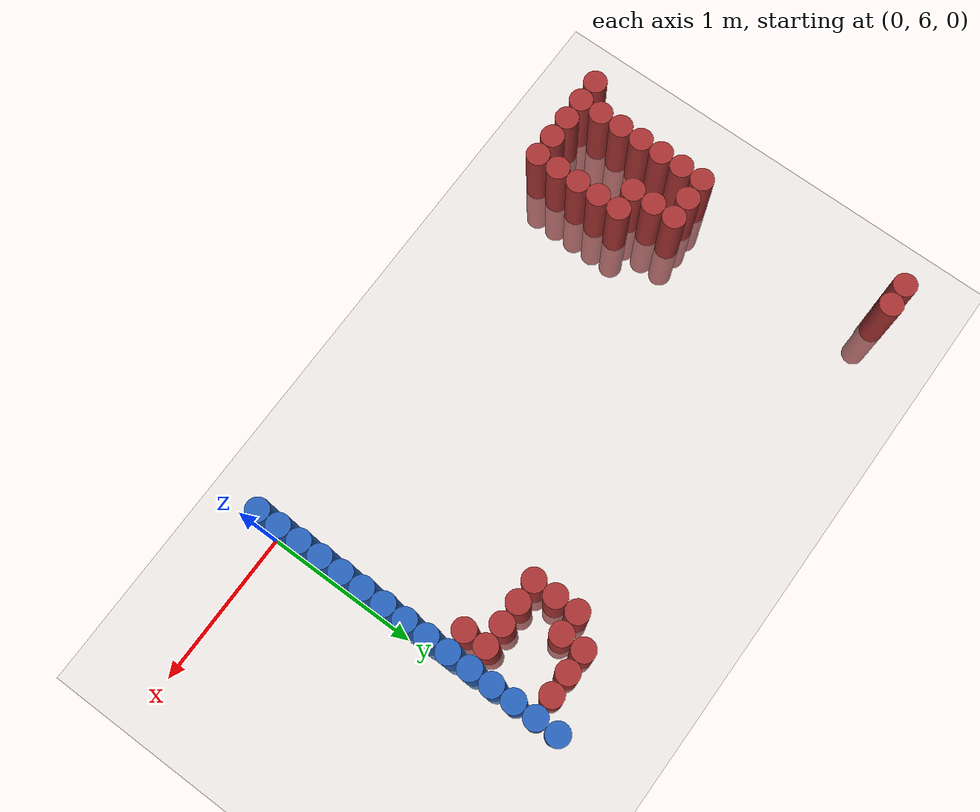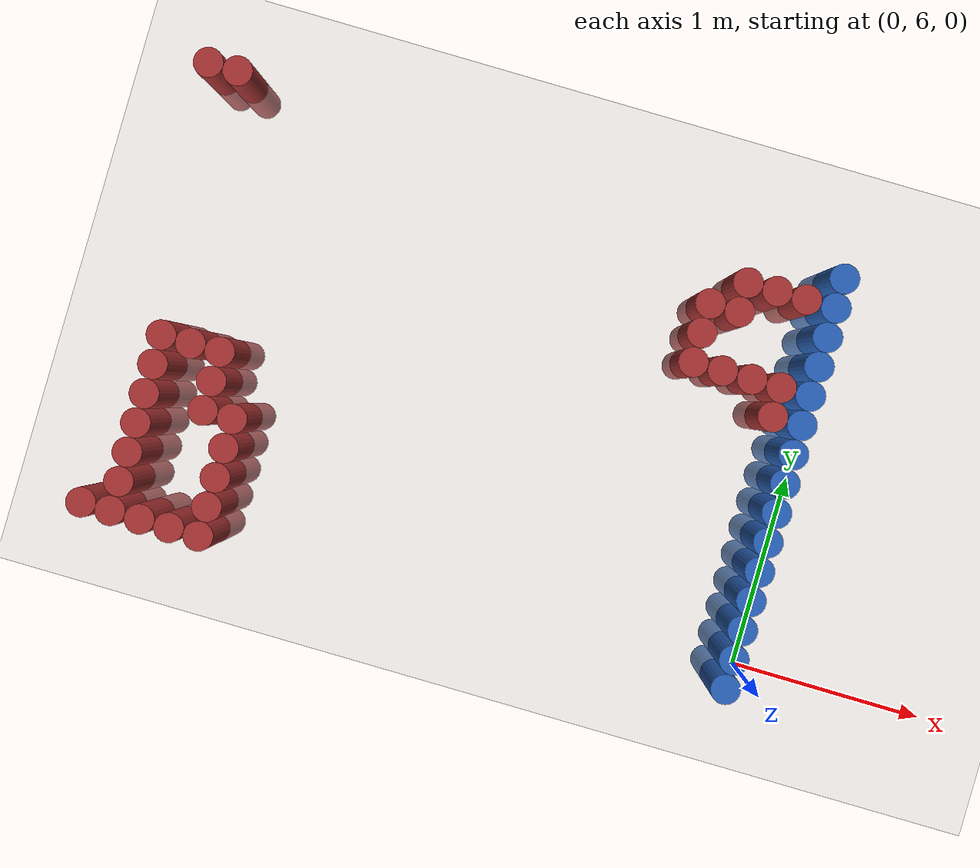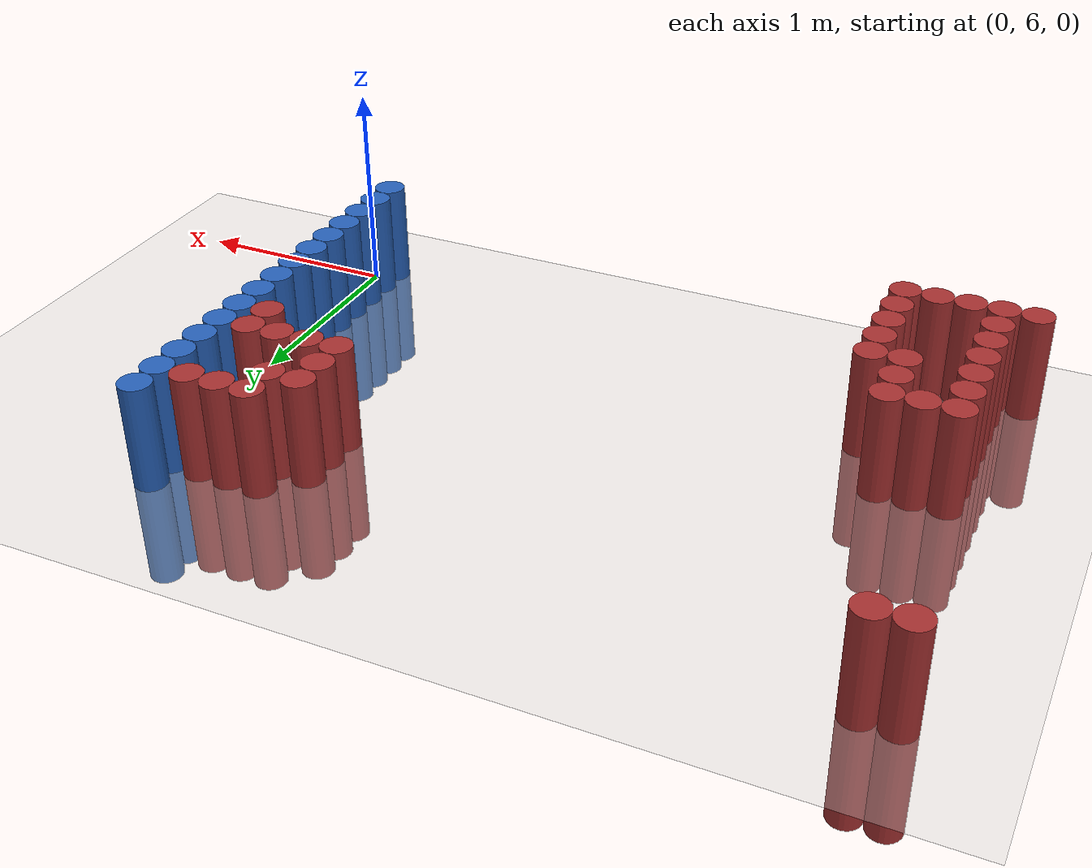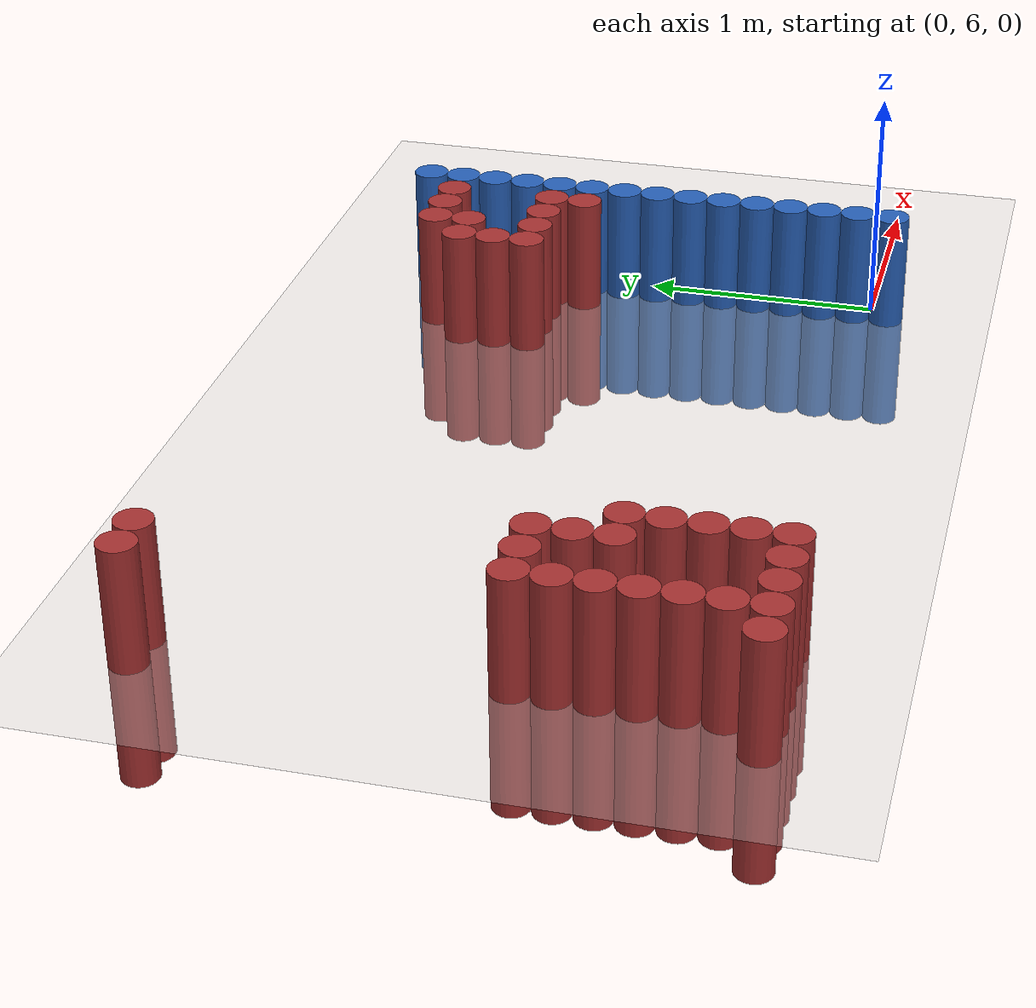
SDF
<sdf version="1.6">
 <world name="default">
  <model name="ground_plane">
   <static>1</static>
   <link name="link">
    <collision name="collision">
     <geometry><plane><normal>0 0 1</normal><size>100 100</size></plane></geometry>
     <surface><friction><ode><mu>100</mu><mu2>50</mu2></ode></friction></surface>
    </collision>
    <visual name="visual">
     <cast_shadows>0</cast_shadows>
     <geometry><plane><normal>0 0 1</normal><size>100 100</size></plane></geometry>
     <material>
      <script><uri>file://media/materials/scripts/gazebo.material</uri><name>Gazebo/Grey</name></script>
     </material>
    </visual>
   </link>
  </model>
  <model name="unit_cylinder_162">
   <static>1</static>
   <pose>-3.375000 5.925000 0.000000 0.000000 0.000000 0.000000</pose>
   <link name="link">
    <inertial>
     <mass>1</mass>
     <inertia><ixx>0.145833</ixx><ixy>0</ixy><ixz>0</ixz><iyy>0.145833</iyy><iyz>0</iyz><izz>0.125</izz></inertia>
    </inertial>
    <collision name="collision">
     <geometry><cylinder><radius>0.075000</radius><length>1</length></cylinder></geometry>
    </collision>
    <visual name="visual">
     <geometry><cylinder><radius>0.075000</radius><length>1</length></cylinder></geometry>
     <material>
      <ambient>0.648000 0.192000 0.192000 1</ambient>
      <diffuse>0.648000 0.192000 0.192000 1</diffuse>
     </material>
     <material>
      <script><name>Gazebo/Grey</name><uri>file://media/materials/scripts/gazebo.material</uri></script>
     </material>
    </visual>
   </link>
  </model>
  <model name="unit_cylinder_163">
   <static>1</static>
   <pose>-3.375000 8.175000 0.000000 0.000000 0.000000 0.000000</pose>
   <link name="link">
    <inertial>
     <mass>1</mass>
     <inertia><ixx>0.145833</ixx><ixy>0</ixy><ixz>0</ixz><iyy>0.145833</iyy><iyz>0</iyz><izz>0.125</izz></inertia>
    </inertial>
    <collision name="collision">
     <geometry><cylinder><radius>0.075000</radius><length>1</length></cylinder></geometry>
    </collision>
    <visual name="visual">
     <geometry><cylinder><radius>0.075000</radius><length>1</length></cylinder></geometry>
     <material>
      <ambient>0.648000 0.192000 0.192000 1</ambient>
      <diffuse>0.648000 0.192000 0.192000 1</diffuse>
     </material>
     <material>
      <script><name>Gazebo/Grey</name><uri>file://media/materials/scripts/gazebo.material</uri></script>
     </material>
    </visual>
   </link>
  </model>
  <model name="unit_cylinder_171">
   <static>1</static>
   <pose>-3.225000 5.925000 0.000000 0.000000 0.000000 0.000000</pose>
   <link name="link">
    <inertial>
     <mass>1</mass>
     <inertia><ixx>0.145833</ixx><ixy>0</ixy><ixz>0</ixz><iyy>0.145833</iyy><iyz>0</iyz><izz>0.125</izz></inertia>
    </inertial>
    <collision name="collision">
     <geometry><cylinder><radius>0.075000</radius><length>1</length></cylinder></geometry>
    </collision>
    <visual name="visual">
     <geometry><cylinder><radius>0.075000</radius><length>1</length></cylinder></geometry>
     <material>
      <ambient>0.648000 0.192000 0.192000 1</ambient>
      <diffuse>0.648000 0.192000 0.192000 1</diffuse>
     </material>
     <material>
      <script><name>Gazebo/Grey</name><uri>file://media/materials/scripts/gazebo.material</uri></script>
     </material>
    </visual>
   </link>
  </model>
  <model name="unit_cylinder_172">
   <static>1</static>
   <pose>-3.225000 6.075000 0.000000 0.000000 0.000000 0.000000</pose>
   <link name="link">
    <inertial>
     <mass>1</mass>
     <inertia><ixx>0.145833</ixx><ixy>0</ixy><ixz>0</ixz><iyy>0.145833</iyy><iyz>0</iyz><izz>0.125</izz></inertia>
    </inertial>
    <collision name="collision">
     <geometry><cylinder><radius>0.075000</radius><length>1</length></cylinder></geometry>
    </collision>
    <visual name="visual">
     <geometry><cylinder><radius>0.075000</radius><length>1</length></cylinder></geometry>
     <material>
      <ambient>0.648000 0.192000 0.192000 1</ambient>
      <diffuse>0.648000 0.192000 0.192000 1</diffuse>
     </material>
     <material>
      <script><name>Gazebo/Grey</name><uri>file://media/materials/scripts/gazebo.material</uri></script>
     </material>
    </visual>
   </link>
  </model>
  <model name="unit_cylinder_173">
   <static>1</static>
   <pose>-3.225000 6.225000 0.000000 0.000000 0.000000 0.000000</pose>
   <link name="link">
    <inertial>
     <mass>1</mass>
     <inertia><ixx>0.145833</ixx><ixy>0</ixy><ixz>0</ixz><iyy>0.145833</iyy><iyz>0</iyz><izz>0.125</izz></inertia>
    </inertial>
    <collision name="collision">
     <geometry><cylinder><radius>0.075000</radius><length>1</length></cylinder></geometry>
    </collision>
    <visual name="visual">
     <geometry><cylinder><radius>0.075000</radius><length>1</length></cylinder></geometry>
     <material>
      <ambient>0.648000 0.192000 0.192000 1</ambient>
      <diffuse>0.648000 0.192000 0.192000 1</diffuse>
     </material>
     <material>
      <script><name>Gazebo/Grey</name><uri>file://media/materials/scripts/gazebo.material</uri></script>
     </material>
    </visual>
   </link>
  </model>
  <model name="unit_cylinder_174">
   <static>1</static>
   <pose>-3.225000 6.375000 0.000000 0.000000 0.000000 0.000000</pose>
   <link name="link">
    <inertial>
     <mass>1</mass>
     <inertia><ixx>0.145833</ixx><ixy>0</ixy><ixz>0</ixz><iyy>0.145833</iyy><iyz>0</iyz><izz>0.125</izz></inertia>
    </inertial>
    <collision name="collision">
     <geometry><cylinder><radius>0.075000</radius><length>1</length></cylinder></geometry>
    </collision>
    <visual name="visual">
     <geometry><cylinder><radius>0.075000</radius><length>1</length></cylinder></geometry>
     <material>
      <ambient>0.648000 0.192000 0.192000 1</ambient>
      <diffuse>0.648000 0.192000 0.192000 1</diffuse>
     </material>
     <material>
      <script><name>Gazebo/Grey</name><uri>file://media/materials/scripts/gazebo.material</uri></script>
     </material>
    </visual>
   </link>
  </model>
  <model name="unit_cylinder_175">
   <static>1</static>
   <pose>-3.225000 6.525000 0.000000 0.000000 0.000000 0.000000</pose>
   <link name="link">
    <inertial>
     <mass>1</mass>
     <inertia><ixx>0.145833</ixx><ixy>0</ixy><ixz>0</ixz><iyy>0.145833</iyy><iyz>0</iyz><izz>0.125</izz></inertia>
    </inertial>
    <collision name="collision">
     <geometry><cylinder><radius>0.075000</radius><length>1</length></cylinder></geometry>
    </collision>
    <visual name="visual">
     <geometry><cylinder><radius>0.075000</radius><length>1</length></cylinder></geometry>
     <material>
      <ambient>0.648000 0.192000 0.192000 1</ambient>
      <diffuse>0.648000 0.192000 0.192000 1</diffuse>
     </material>
     <material>
      <script><name>Gazebo/Grey</name><uri>file://media/materials/scripts/gazebo.material</uri></script>
     </material>
    </visual>
   </link>
  </model>
  <model name="unit_cylinder_176">
   <static>1</static>
   <pose>-3.225000 6.675000 0.000000 0.000000 0.000000 0.000000</pose>
   <link name="link">
    <inertial>
     <mass>1</mass>
     <inertia><ixx>0.145833</ixx><ixy>0</ixy><ixz>0</ixz><iyy>0.145833</iyy><iyz>0</iyz><izz>0.125</izz></inertia>
    </inertial>
    <collision name="collision">
     <geometry><cylinder><radius>0.075000</radius><length>1</length></cylinder></geometry>
    </collision>
    <visual name="visual">
     <geometry><cylinder><radius>0.075000</radius><length>1</length></cylinder></geometry>
     <material>
      <ambient>0.648000 0.192000 0.192000 1</ambient>
      <diffuse>0.648000 0.192000 0.192000 1</diffuse>
     </material>
     <material>
      <script><name>Gazebo/Grey</name><uri>file://media/materials/scripts/gazebo.material</uri></script>
     </material>
    </visual>
   </link>
  </model>
  <model name="unit_cylinder_177">
   <static>1</static>
   <pose>-3.225000 6.825000 0.000000 0.000000 0.000000 0.000000</pose>
   <link name="link">
    <inertial>
     <mass>1</mass>
     <inertia><ixx>0.145833</ixx><ixy>0</ixy><ixz>0</ixz><iyy>0.145833</iyy><iyz>0</iyz><izz>0.125</izz></inertia>
    </inertial>
    <collision name="collision">
     <geometry><cylinder><radius>0.075000</radius><length>1</length></cylinder></geometry>
    </collision>
    <visual name="visual">
     <geometry><cylinder><radius>0.075000</radius><length>1</length></cylinder></geometry>
     <material>
      <ambient>0.648000 0.192000 0.192000 1</ambient>
      <diffuse>0.648000 0.192000 0.192000 1</diffuse>
     </material>
     <material>
      <script><name>Gazebo/Grey</name><uri>file://media/materials/scripts/gazebo.material</uri></script>
     </material>
    </visual>
   </link>
  </model>
  <model name="unit_cylinder_178">
   <static>1</static>
   <pose>-3.225000 8.175000 0.000000 0.000000 0.000000 0.000000</pose>
   <link name="link">
    <inertial>
     <mass>1</mass>
     <inertia><ixx>0.145833</ixx><ixy>0</ixy><ixz>0</ixz><iyy>0.145833</iyy><iyz>0</iyz><izz>0.125</izz></inertia>
    </inertial>
    <collision name="collision">
     <geometry><cylinder><radius>0.075000</radius><length>1</length></cylinder></geometry>
    </collision>
    <visual name="visual">
     <geometry><cylinder><radius>0.075000</radius><length>1</length></cylinder></geometry>
     <material>
      <ambient>0.648000 0.192000 0.192000 1</ambient>
      <diffuse>0.648000 0.192000 0.192000 1</diffuse>
     </material>
     <material>
      <script><name>Gazebo/Grey</name><uri>file://media/materials/scripts/gazebo.material</uri></script>
     </material>
    </visual>
   </link>
  </model>
  <model name="unit_cylinder_184">
   <static>1</static>
   <pose>-3.075000 5.925000 0.000000 0.000000 0.000000 0.000000</pose>
   <link name="link">
    <inertial>
     <mass>1</mass>
     <inertia><ixx>0.145833</ixx><ixy>0</ixy><ixz>0</ixz><iyy>0.145833</iyy><iyz>0</iyz><izz>0.125</izz></inertia>
    </inertial>
    <collision name="collision">
     <geometry><cylinder><radius>0.075000</radius><length>1</length></cylinder></geometry>
    </collision>
    <visual name="visual">
     <geometry><cylinder><radius>0.075000</radius><length>1</length></cylinder></geometry>
     <material>
      <ambient>0.648000 0.192000 0.192000 1</ambient>
      <diffuse>0.648000 0.192000 0.192000 1</diffuse>
     </material>
     <material>
      <script><name>Gazebo/Grey</name><uri>file://media/materials/scripts/gazebo.material</uri></script>
     </material>
    </visual>
   </link>
  </model>
  <model name="unit_cylinder_185">
   <static>1</static>
   <pose>-3.075000 6.825000 0.000000 0.000000 0.000000 0.000000</pose>
   <link name="link">
    <inertial>
     <mass>1</mass>
     <inertia><ixx>0.145833</ixx><ixy>0</ixy><ixz>0</ixz><iyy>0.145833</iyy><iyz>0</iyz><izz>0.125</izz></inertia>
    </inertial>
    <collision name="collision">
     <geometry><cylinder><radius>0.075000</radius><length>1</length></cylinder></geometry>
    </collision>
    <visual name="visual">
     <geometry><cylinder><radius>0.075000</radius><length>1</length></cylinder></geometry>
     <material>
      <ambient>0.648000 0.192000 0.192000 1</ambient>
      <diffuse>0.648000 0.192000 0.192000 1</diffuse>
     </material>
     <material>
      <script><name>Gazebo/Grey</name><uri>file://media/materials/scripts/gazebo.material</uri></script>
     </material>
    </visual>
   </link>
  </model>
  <model name="unit_cylinder_193">
   <static>1</static>
   <pose>-2.925000 5.925000 0.000000 0.000000 0.000000 0.000000</pose>
   <link name="link">
    <inertial>
     <mass>1</mass>
     <inertia><ixx>0.145833</ixx><ixy>0</ixy><ixz>0</ixz><iyy>0.145833</iyy><iyz>0</iyz><izz>0.125</izz></inertia>
    </inertial>
    <collision name="collision">
     <geometry><cylinder><radius>0.075000</radius><length>1</length></cylinder></geometry>
    </collision>
    <visual name="visual">
     <geometry><cylinder><radius>0.075000</radius><length>1</length></cylinder></geometry>
     <material>
      <ambient>0.648000 0.192000 0.192000 1</ambient>
      <diffuse>0.648000 0.192000 0.192000 1</diffuse>
     </material>
     <material>
      <script><name>Gazebo/Grey</name><uri>file://media/materials/scripts/gazebo.material</uri></script>
     </material>
    </visual>
   </link>
  </model>
  <model name="unit_cylinder_194">
   <static>1</static>
   <pose>-2.925000 6.525000 0.000000 0.000000 0.000000 0.000000</pose>
   <link name="link">
    <inertial>
     <mass>1</mass>
     <inertia><ixx>0.145833</ixx><ixy>0</ixy><ixz>0</ixz><iyy>0.145833</iyy><iyz>0</iyz><izz>0.125</izz></inertia>
    </inertial>
    <collision name="collision">
     <geometry><cylinder><radius>0.075000</radius><length>1</length></cylinder></geometry>
    </collision>
    <visual name="visual">
     <geometry><cylinder><radius>0.075000</radius><length>1</length></cylinder></geometry>
     <material>
      <ambient>0.648000 0.192000 0.192000 1</ambient>
      <diffuse>0.648000 0.192000 0.192000 1</diffuse>
     </material>
     <material>
      <script><name>Gazebo/Grey</name><uri>file://media/materials/scripts/gazebo.material</uri></script>
     </material>
    </visual>
   </link>
  </model>
  <model name="unit_cylinder_195">
   <static>1</static>
   <pose>-2.925000 6.675000 0.000000 0.000000 0.000000 0.000000</pose>
   <link name="link">
    <inertial>
     <mass>1</mass>
     <inertia><ixx>0.145833</ixx><ixy>0</ixy><ixz>0</ixz><iyy>0.145833</iyy><iyz>0</iyz><izz>0.125</izz></inertia>
    </inertial>
    <collision name="collision">
     <geometry><cylinder><radius>0.075000</radius><length>1</length></cylinder></geometry>
    </collision>
    <visual name="visual">
     <geometry><cylinder><radius>0.075000</radius><length>1</length></cylinder></geometry>
     <material>
      <ambient>0.648000 0.192000 0.192000 1</ambient>
      <diffuse>0.648000 0.192000 0.192000 1</diffuse>
     </material>
     <material>
      <script><name>Gazebo/Grey</name><uri>file://media/materials/scripts/gazebo.material</uri></script>
     </material>
    </visual>
   </link>
  </model>
  <model name="unit_cylinder_196">
   <static>1</static>
   <pose>-2.925000 6.825000 0.000000 0.000000 0.000000 0.000000</pose>
   <link name="link">
    <inertial>
     <mass>1</mass>
     <inertia><ixx>0.145833</ixx><ixy>0</ixy><ixz>0</ixz><iyy>0.145833</iyy><iyz>0</iyz><izz>0.125</izz></inertia>
    </inertial>
    <collision name="collision">
     <geometry><cylinder><radius>0.075000</radius><length>1</length></cylinder></geometry>
    </collision>
    <visual name="visual">
     <geometry><cylinder><radius>0.075000</radius><length>1</length></cylinder></geometry>
     <material>
      <ambient>0.648000 0.192000 0.192000 1</ambient>
      <diffuse>0.648000 0.192000 0.192000 1</diffuse>
     </material>
     <material>
      <script><name>Gazebo/Grey</name><uri>file://media/materials/scripts/gazebo.material</uri></script>
     </material>
    </visual>
   </link>
  </model>
  <model name="unit_cylinder_197">
   <static>1</static>
   <pose>-2.775000 5.925000 0.000000 0.000000 0.000000 0.000000</pose>
   <link name="link">
    <inertial>
     <mass>1</mass>
     <inertia><ixx>0.145833</ixx><ixy>0</ixy><ixz>0</ixz><iyy>0.145833</iyy><iyz>0</iyz><izz>0.125</izz></inertia>
    </inertial>
    <collision name="collision">
     <geometry><cylinder><radius>0.075000</radius><length>1</length></cylinder></geometry>
    </collision>
    <visual name="visual">
     <geometry><cylinder><radius>0.075000</radius><length>1</length></cylinder></geometry>
     <material>
      <ambient>0.648000 0.192000 0.192000 1</ambient>
      <diffuse>0.648000 0.192000 0.192000 1</diffuse>
     </material>
     <material>
      <script><name>Gazebo/Grey</name><uri>file://media/materials/scripts/gazebo.material</uri></script>
     </material>
    </visual>
   </link>
  </model>
  <model name="unit_cylinder_198">
   <static>1</static>
   <pose>-2.775000 6.075000 0.000000 0.000000 0.000000 0.000000</pose>
   <link name="link">
    <inertial>
     <mass>1</mass>
     <inertia><ixx>0.145833</ixx><ixy>0</ixy><ixz>0</ixz><iyy>0.145833</iyy><iyz>0</iyz><izz>0.125</izz></inertia>
    </inertial>
    <collision name="collision">
     <geometry><cylinder><radius>0.075000</radius><length>1</length></cylinder></geometry>
    </collision>
    <visual name="visual">
     <geometry><cylinder><radius>0.075000</radius><length>1</length></cylinder></geometry>
     <material>
      <ambient>0.648000 0.192000 0.192000 1</ambient>
      <diffuse>0.648000 0.192000 0.192000 1</diffuse>
     </material>
     <material>
      <script><name>Gazebo/Grey</name><uri>file://media/materials/scripts/gazebo.material</uri></script>
     </material>
    </visual>
   </link>
  </model>
  <model name="unit_cylinder_199">
   <static>1</static>
   <pose>-2.775000 6.225000 0.000000 0.000000 0.000000 0.000000</pose>
   <link name="link">
    <inertial>
     <mass>1</mass>
     <inertia><ixx>0.145833</ixx><ixy>0</ixy><ixz>0</ixz><iyy>0.145833</iyy><iyz>0</iyz><izz>0.125</izz></inertia>
    </inertial>
    <collision name="collision">
     <geometry><cylinder><radius>0.075000</radius><length>1</length></cylinder></geometry>
    </collision>
    <visual name="visual">
     <geometry><cylinder><radius>0.075000</radius><length>1</length></cylinder></geometry>
     <material>
      <ambient>0.648000 0.192000 0.192000 1</ambient>
      <diffuse>0.648000 0.192000 0.192000 1</diffuse>
     </material>
     <material>
      <script><name>Gazebo/Grey</name><uri>file://media/materials/scripts/gazebo.material</uri></script>
     </material>
    </visual>
   </link>
  </model>
  <model name="unit_cylinder_200">
   <static>1</static>
   <pose>-2.775000 6.375000 0.000000 0.000000 0.000000 0.000000</pose>
   <link name="link">
    <inertial>
     <mass>1</mass>
     <inertia><ixx>0.145833</ixx><ixy>0</ixy><ixz>0</ixz><iyy>0.145833</iyy><iyz>0</iyz><izz>0.125</izz></inertia>
    </inertial>
    <collision name="collision">
     <geometry><cylinder><radius>0.075000</radius><length>1</length></cylinder></geometry>
    </collision>
    <visual name="visual">
     <geometry><cylinder><radius>0.075000</radius><length>1</length></cylinder></geometry>
     <material>
      <ambient>0.648000 0.192000 0.192000 1</ambient>
      <diffuse>0.648000 0.192000 0.192000 1</diffuse>
     </material>
     <material>
      <script><name>Gazebo/Grey</name><uri>file://media/materials/scripts/gazebo.material</uri></script>
     </material>
    </visual>
   </link>
  </model>
  <model name="unit_cylinder_201">
   <static>1</static>
   <pose>-2.775000 6.525000 0.000000 0.000000 0.000000 0.000000</pose>
   <link name="link">
    <inertial>
     <mass>1</mass>
     <inertia><ixx>0.145833</ixx><ixy>0</ixy><ixz>0</ixz><iyy>0.145833</iyy><iyz>0</iyz><izz>0.125</izz></inertia>
    </inertial>
    <collision name="collision">
     <geometry><cylinder><radius>0.075000</radius><length>1</length></cylinder></geometry>
    </collision>
    <visual name="visual">
     <geometry><cylinder><radius>0.075000</radius><length>1</length></cylinder></geometry>
     <material>
      <ambient>0.648000 0.192000 0.192000 1</ambient>
      <diffuse>0.648000 0.192000 0.192000 1</diffuse>
     </material>
     <material>
      <script><name>Gazebo/Grey</name><uri>file://media/materials/scripts/gazebo.material</uri></script>
     </material>
    </visual>
   </link>
  </model>
  <model name="unit_cylinder_226">
   <static>1</static>
   <pose>-0.675000 7.425000 0.000000 0.000000 0.000000 0.000000</pose>
   <link name="link">
    <inertial>
     <mass>1</mass>
     <inertia><ixx>0.145833</ixx><ixy>0</ixy><ixz>0</ixz><iyy>0.145833</iyy><iyz>0</iyz><izz>0.125</izz></inertia>
    </inertial>
    <collision name="collision">
     <geometry><cylinder><radius>0.075000</radius><length>1</length></cylinder></geometry>
    </collision>
    <visual name="visual">
     <geometry><cylinder><radius>0.075000</radius><length>1</length></cylinder></geometry>
     <material>
      <ambient>0.648000 0.192000 0.192000 1</ambient>
      <diffuse>0.648000 0.192000 0.192000 1</diffuse>
     </material>
     <material>
      <script><name>Gazebo/Grey</name><uri>file://media/materials/scripts/gazebo.material</uri></script>
     </material>
    </visual>
   </link>
  </model>
  <model name="unit_cylinder_227">
   <static>1</static>
   <pose>-0.675000 7.575000 0.000000 0.000000 0.000000 0.000000</pose>
   <link name="link">
    <inertial>
     <mass>1</mass>
     <inertia><ixx>0.145833</ixx><ixy>0</ixy><ixz>0</ixz><iyy>0.145833</iyy><iyz>0</iyz><izz>0.125</izz></inertia>
    </inertial>
    <collision name="collision">
     <geometry><cylinder><radius>0.075000</radius><length>1</length></cylinder></geometry>
    </collision>
    <visual name="visual">
     <geometry><cylinder><radius>0.075000</radius><length>1</length></cylinder></geometry>
     <material>
      <ambient>0.648000 0.192000 0.192000 1</ambient>
      <diffuse>0.648000 0.192000 0.192000 1</diffuse>
     </material>
     <material>
      <script><name>Gazebo/Grey</name><uri>file://media/materials/scripts/gazebo.material</uri></script>
     </material>
    </visual>
   </link>
  </model>
  <model name="unit_cylinder_228">
   <static>1</static>
   <pose>-0.675000 7.725000 0.000000 0.000000 0.000000 0.000000</pose>
   <link name="link">
    <inertial>
     <mass>1</mass>
     <inertia><ixx>0.145833</ixx><ixy>0</ixy><ixz>0</ixz><iyy>0.145833</iyy><iyz>0</iyz><izz>0.125</izz></inertia>
    </inertial>
    <collision name="collision">
     <geometry><cylinder><radius>0.075000</radius><length>1</length></cylinder></geometry>
    </collision>
    <visual name="visual">
     <geometry><cylinder><radius>0.075000</radius><length>1</length></cylinder></geometry>
     <material>
      <ambient>0.648000 0.192000 0.192000 1</ambient>
      <diffuse>0.648000 0.192000 0.192000 1</diffuse>
     </material>
     <material>
      <script><name>Gazebo/Grey</name><uri>file://media/materials/scripts/gazebo.material</uri></script>
     </material>
    </visual>
   </link>
  </model>
  <model name="unit_cylinder_235">
   <static>1</static>
   <pose>-0.525000 7.425000 0.000000 0.000000 0.000000 0.000000</pose>
   <link name="link">
    <inertial>
     <mass>1</mass>
     <inertia><ixx>0.145833</ixx><ixy>0</ixy><ixz>0</ixz><iyy>0.145833</iyy><iyz>0</iyz><izz>0.125</izz></inertia>
    </inertial>
    <collision name="collision">
     <geometry><cylinder><radius>0.075000</radius><length>1</length></cylinder></geometry>
    </collision>
    <visual name="visual">
     <geometry><cylinder><radius>0.075000</radius><length>1</length></cylinder></geometry>
     <material>
      <ambient>0.648000 0.192000 0.192000 1</ambient>
      <diffuse>0.648000 0.192000 0.192000 1</diffuse>
     </material>
     <material>
      <script><name>Gazebo/Grey</name><uri>file://media/materials/scripts/gazebo.material</uri></script>
     </material>
    </visual>
   </link>
  </model>
  <model name="unit_cylinder_236">
   <static>1</static>
   <pose>-0.525000 7.725000 0.000000 0.000000 0.000000 0.000000</pose>
   <link name="link">
    <inertial>
     <mass>1</mass>
     <inertia><ixx>0.145833</ixx><ixy>0</ixy><ixz>0</ixz><iyy>0.145833</iyy><iyz>0</iyz><izz>0.125</izz></inertia>
    </inertial>
    <collision name="collision">
     <geometry><cylinder><radius>0.075000</radius><length>1</length></cylinder></geometry>
    </collision>
    <visual name="visual">
     <geometry><cylinder><radius>0.075000</radius><length>1</length></cylinder></geometry>
     <material>
      <ambient>0.648000 0.192000 0.192000 1</ambient>
      <diffuse>0.648000 0.192000 0.192000 1</diffuse>
     </material>
     <material>
      <script><name>Gazebo/Grey</name><uri>file://media/materials/scripts/gazebo.material</uri></script>
     </material>
    </visual>
   </link>
  </model>
  <model name="unit_cylinder_237">
   <static>1</static>
   <pose>-0.525000 7.875000 0.000000 0.000000 0.000000 0.000000</pose>
   <link name="link">
    <inertial>
     <mass>1</mass>
     <inertia><ixx>0.145833</ixx><ixy>0</ixy><ixz>0</ixz><iyy>0.145833</iyy><iyz>0</iyz><izz>0.125</izz></inertia>
    </inertial>
    <collision name="collision">
     <geometry><cylinder><radius>0.075000</radius><length>1</length></cylinder></geometry>
    </collision>
    <visual name="visual">
     <geometry><cylinder><radius>0.075000</radius><length>1</length></cylinder></geometry>
     <material>
      <ambient>0.648000 0.192000 0.192000 1</ambient>
      <diffuse>0.648000 0.192000 0.192000 1</diffuse>
     </material>
     <material>
      <script><name>Gazebo/Grey</name><uri>file://media/materials/scripts/gazebo.material</uri></script>
     </material>
    </visual>
   </link>
  </model>
  <model name="unit_cylinder_243">
   <static>1</static>
   <pose>-0.375000 7.425000 0.000000 0.000000 0.000000 0.000000</pose>
   <link name="link">
    <inertial>
     <mass>1</mass>
     <inertia><ixx>0.145833</ixx><ixy>0</ixy><ixz>0</ixz><iyy>0.145833</iyy><iyz>0</iyz><izz>0.125</izz></inertia>
    </inertial>
    <collision name="collision">
     <geometry><cylinder><radius>0.075000</radius><length>1</length></cylinder></geometry>
    </collision>
    <visual name="visual">
     <geometry><cylinder><radius>0.075000</radius><length>1</length></cylinder></geometry>
     <material>
      <ambient>0.648000 0.192000 0.192000 1</ambient>
      <diffuse>0.648000 0.192000 0.192000 1</diffuse>
     </material>
     <material>
      <script><name>Gazebo/Grey</name><uri>file://media/materials/scripts/gazebo.material</uri></script>
     </material>
    </visual>
   </link>
  </model>
  <model name="unit_cylinder_244">
   <static>1</static>
   <pose>-0.375000 7.875000 0.000000 0.000000 0.000000 0.000000</pose>
   <link name="link">
    <inertial>
     <mass>1</mass>
     <inertia><ixx>0.145833</ixx><ixy>0</ixy><ixz>0</ixz><iyy>0.145833</iyy><iyz>0</iyz><izz>0.125</izz></inertia>
    </inertial>
    <collision name="collision">
     <geometry><cylinder><radius>0.075000</radius><length>1</length></cylinder></geometry>
    </collision>
    <visual name="visual">
     <geometry><cylinder><radius>0.075000</radius><length>1</length></cylinder></geometry>
     <material>
      <ambient>0.648000 0.192000 0.192000 1</ambient>
      <diffuse>0.648000 0.192000 0.192000 1</diffuse>
     </material>
     <material>
      <script><name>Gazebo/Grey</name><uri>file://media/materials/scripts/gazebo.material</uri></script>
     </material>
    </visual>
   </link>
  </model>
  <model name="unit_cylinder_252">
   <static>1</static>
   <pose>-0.225000 7.275000 0.000000 0.000000 0.000000 0.000000</pose>
   <link name="link">
    <inertial>
     <mass>1</mass>
     <inertia><ixx>0.145833</ixx><ixy>0</ixy><ixz>0</ixz><iyy>0.145833</iyy><iyz>0</iyz><izz>0.125</izz></inertia>
    </inertial>
    <collision name="collision">
     <geometry><cylinder><radius>0.075000</radius><length>1</length></cylinder></geometry>
    </collision>
    <visual name="visual">
     <geometry><cylinder><radius>0.075000</radius><length>1</length></cylinder></geometry>
     <material>
      <ambient>0.648000 0.192000 0.192000 1</ambient>
      <diffuse>0.648000 0.192000 0.192000 1</diffuse>
     </material>
     <material>
      <script><name>Gazebo/Grey</name><uri>file://media/materials/scripts/gazebo.material</uri></script>
     </material>
    </visual>
   </link>
  </model>
  <model name="unit_cylinder_253">
   <static>1</static>
   <pose>-0.225000 7.425000 0.000000 0.000000 0.000000 0.000000</pose>
   <link name="link">
    <inertial>
     <mass>1</mass>
     <inertia><ixx>0.145833</ixx><ixy>0</ixy><ixz>0</ixz><iyy>0.145833</iyy><iyz>0</iyz><izz>0.125</izz></inertia>
    </inertial>
    <collision name="collision">
     <geometry><cylinder><radius>0.075000</radius><length>1</length></cylinder></geometry>
    </collision>
    <visual name="visual">
     <geometry><cylinder><radius>0.075000</radius><length>1</length></cylinder></geometry>
     <material>
      <ambient>0.648000 0.192000 0.192000 1</ambient>
      <diffuse>0.648000 0.192000 0.192000 1</diffuse>
     </material>
     <material>
      <script><name>Gazebo/Grey</name><uri>file://media/materials/scripts/gazebo.material</uri></script>
     </material>
    </visual>
   </link>
  </model>
  <model name="unit_cylinder_254">
   <static>1</static>
   <pose>-0.225000 7.875000 0.000000 0.000000 0.000000 0.000000</pose>
   <link name="link">
    <inertial>
     <mass>1</mass>
     <inertia><ixx>0.145833</ixx><ixy>0</ixy><ixz>0</ixz><iyy>0.145833</iyy><iyz>0</iyz><izz>0.125</izz></inertia>
    </inertial>
    <collision name="collision">
     <geometry><cylinder><radius>0.075000</radius><length>1</length></cylinder></geometry>
    </collision>
    <visual name="visual">
     <geometry><cylinder><radius>0.075000</radius><length>1</length></cylinder></geometry>
     <material>
      <ambient>0.648000 0.192000 0.192000 1</ambient>
      <diffuse>0.648000 0.192000 0.192000 1</diffuse>
     </material>
     <material>
      <script><name>Gazebo/Grey</name><uri>file://media/materials/scripts/gazebo.material</uri></script>
     </material>
    </visual>
   </link>
  </model>
  <model name="unit_cylinder_260">
   <static>1</static>
   <pose>-0.075000 5.925000 0.000000 0.000000 0.000000 0.000000</pose>
   <link name="link">
    <inertial>
     <mass>1</mass>
     <inertia><ixx>0.145833</ixx><ixy>0</ixy><ixz>0</ixz><iyy>0.145833</iyy><iyz>0</iyz><izz>0.125</izz></inertia>
    </inertial>
    <collision name="collision">
     <geometry><cylinder><radius>0.075000</radius><length>1</length></cylinder></geometry>
    </collision>
    <visual name="visual">
     <geometry><cylinder><radius>0.075000</radius><length>1</length></cylinder></geometry>
     <material>
      <ambient>0.152000 0.379000 0.720000 1</ambient>
      <diffuse>0.152000 0.379000 0.720000 1</diffuse>
     </material>
     <material>
      <script><name>Gazebo/Grey</name><uri>file://media/materials/scripts/gazebo.material</uri></script>
     </material>
    </visual>
   </link>
  </model>
  <model name="unit_cylinder_261">
   <static>1</static>
   <pose>-0.075000 6.075000 0.000000 0.000000 0.000000 0.000000</pose>
   <link name="link">
    <inertial>
     <mass>1</mass>
     <inertia><ixx>0.145833</ixx><ixy>0</ixy><ixz>0</ixz><iyy>0.145833</iyy><iyz>0</iyz><izz>0.125</izz></inertia>
    </inertial>
    <collision name="collision">
     <geometry><cylinder><radius>0.075000</radius><length>1</length></cylinder></geometry>
    </collision>
    <visual name="visual">
     <geometry><cylinder><radius>0.075000</radius><length>1</length></cylinder></geometry>
     <material>
      <ambient>0.152000 0.379000 0.720000 1</ambient>
      <diffuse>0.152000 0.379000 0.720000 1</diffuse>
     </material>
     <material>
      <script><name>Gazebo/Grey</name><uri>file://media/materials/scripts/gazebo.material</uri></script>
     </material>
    </visual>
   </link>
  </model>
  <model name="unit_cylinder_262">
   <static>1</static>
   <pose>-0.075000 6.225000 0.000000 0.000000 0.000000 0.000000</pose>
   <link name="link">
    <inertial>
     <mass>1</mass>
     <inertia><ixx>0.145833</ixx><ixy>0</ixy><ixz>0</ixz><iyy>0.145833</iyy><iyz>0</iyz><izz>0.125</izz></inertia>
    </inertial>
    <collision name="collision">
     <geometry><cylinder><radius>0.075000</radius><length>1</length></cylinder></geometry>
    </collision>
    <visual name="visual">
     <geometry><cylinder><radius>0.075000</radius><length>1</length></cylinder></geometry>
     <material>
      <ambient>0.152000 0.379000 0.720000 1</ambient>
      <diffuse>0.152000 0.379000 0.720000 1</diffuse>
     </material>
     <material>
      <script><name>Gazebo/Grey</name><uri>file://media/materials/scripts/gazebo.material</uri></script>
     </material>
    </visual>
   </link>
  </model>
  <model name="unit_cylinder_263">
   <static>1</static>
   <pose>-0.075000 6.375000 0.000000 0.000000 0.000000 0.000000</pose>
   <link name="link">
    <inertial>
     <mass>1</mass>
     <inertia><ixx>0.145833</ixx><ixy>0</ixy><ixz>0</ixz><iyy>0.145833</iyy><iyz>0</iyz><izz>0.125</izz></inertia>
    </inertial>
    <collision name="collision">
     <geometry><cylinder><radius>0.075000</radius><length>1</length></cylinder></geometry>
    </collision>
    <visual name="visual">
     <geometry><cylinder><radius>0.075000</radius><length>1</length></cylinder></geometry>
     <material>
      <ambient>0.152000 0.379000 0.720000 1</ambient>
      <diffuse>0.152000 0.379000 0.720000 1</diffuse>
     </material>
     <material>
      <script><name>Gazebo/Grey</name><uri>file://media/materials/scripts/gazebo.material</uri></script>
     </material>
    </visual>
   </link>
  </model>
  <model name="unit_cylinder_264">
   <static>1</static>
   <pose>-0.075000 6.525000 0.000000 0.000000 0.000000 0.000000</pose>
   <link name="link">
    <inertial>
     <mass>1</mass>
     <inertia><ixx>0.145833</ixx><ixy>0</ixy><ixz>0</ixz><iyy>0.145833</iyy><iyz>0</iyz><izz>0.125</izz></inertia>
    </inertial>
    <collision name="collision">
     <geometry><cylinder><radius>0.075000</radius><length>1</length></cylinder></geometry>
    </collision>
    <visual name="visual">
     <geometry><cylinder><radius>0.075000</radius><length>1</length></cylinder></geometry>
     <material>
      <ambient>0.152000 0.379000 0.720000 1</ambient>
      <diffuse>0.152000 0.379000 0.720000 1</diffuse>
     </material>
     <material>
      <script><name>Gazebo/Grey</name><uri>file://media/materials/scripts/gazebo.material</uri></script>
     </material>
    </visual>
   </link>
  </model>
  <model name="unit_cylinder_265">
   <static>1</static>
   <pose>-0.075000 6.675000 0.000000 0.000000 0.000000 0.000000</pose>
   <link name="link">
    <inertial>
     <mass>1</mass>
     <inertia><ixx>0.145833</ixx><ixy>0</ixy><ixz>0</ixz><iyy>0.145833</iyy><iyz>0</iyz><izz>0.125</izz></inertia>
    </inertial>
    <collision name="collision">
     <geometry><cylinder><radius>0.075000</radius><length>1</length></cylinder></geometry>
    </collision>
    <visual name="visual">
     <geometry><cylinder><radius>0.075000</radius><length>1</length></cylinder></geometry>
     <material>
      <ambient>0.152000 0.379000 0.720000 1</ambient>
      <diffuse>0.152000 0.379000 0.720000 1</diffuse>
     </material>
     <material>
      <script><name>Gazebo/Grey</name><uri>file://media/materials/scripts/gazebo.material</uri></script>
     </material>
    </visual>
   </link>
  </model>
  <model name="unit_cylinder_266">
   <static>1</static>
   <pose>-0.075000 6.825000 0.000000 0.000000 0.000000 0.000000</pose>
   <link name="link">
    <inertial>
     <mass>1</mass>
     <inertia><ixx>0.145833</ixx><ixy>0</ixy><ixz>0</ixz><iyy>0.145833</iyy><iyz>0</iyz><izz>0.125</izz></inertia>
    </inertial>
    <collision name="collision">
     <geometry><cylinder><radius>0.075000</radius><length>1</length></cylinder></geometry>
    </collision>
    <visual name="visual">
     <geometry><cylinder><radius>0.075000</radius><length>1</length></cylinder></geometry>
     <material>
      <ambient>0.152000 0.379000 0.720000 1</ambient>
      <diffuse>0.152000 0.379000 0.720000 1</diffuse>
     </material>
     <material>
      <script><name>Gazebo/Grey</name><uri>file://media/materials/scripts/gazebo.material</uri></script>
     </material>
    </visual>
   </link>
  </model>
  <model name="unit_cylinder_267">
   <static>1</static>
   <pose>-0.075000 6.975000 0.000000 0.000000 0.000000 0.000000</pose>
   <link name="link">
    <inertial>
     <mass>1</mass>
     <inertia><ixx>0.145833</ixx><ixy>0</ixy><ixz>0</ixz><iyy>0.145833</iyy><iyz>0</iyz><izz>0.125</izz></inertia>
    </inertial>
    <collision name="collision">
     <geometry><cylinder><radius>0.075000</radius><length>1</length></cylinder></geometry>
    </collision>
    <visual name="visual">
     <geometry><cylinder><radius>0.075000</radius><length>1</length></cylinder></geometry>
     <material>
      <ambient>0.152000 0.379000 0.720000 1</ambient>
      <diffuse>0.152000 0.379000 0.720000 1</diffuse>
     </material>
     <material>
      <script><name>Gazebo/Grey</name><uri>file://media/materials/scripts/gazebo.material</uri></script>
     </material>
    </visual>
   </link>
  </model>
  <model name="unit_cylinder_268">
   <static>1</static>
   <pose>-0.075000 7.125000 0.000000 0.000000 0.000000 0.000000</pose>
   <link name="link">
    <inertial>
     <mass>1</mass>
     <inertia><ixx>0.145833</ixx><ixy>0</ixy><ixz>0</ixz><iyy>0.145833</iyy><iyz>0</iyz><izz>0.125</izz></inertia>
    </inertial>
    <collision name="collision">
     <geometry><cylinder><radius>0.075000</radius><length>1</length></cylinder></geometry>
    </collision>
    <visual name="visual">
     <geometry><cylinder><radius>0.075000</radius><length>1</length></cylinder></geometry>
     <material>
      <ambient>0.152000 0.379000 0.720000 1</ambient>
      <diffuse>0.152000 0.379000 0.720000 1</diffuse>
     </material>
     <material>
      <script><name>Gazebo/Grey</name><uri>file://media/materials/scripts/gazebo.material</uri></script>
     </material>
    </visual>
   </link>
  </model>
  <model name="unit_cylinder_269">
   <static>1</static>
   <pose>-0.075000 7.275000 0.000000 0.000000 0.000000 0.000000</pose>
   <link name="link">
    <inertial>
     <mass>1</mass>
     <inertia><ixx>0.145833</ixx><ixy>0</ixy><ixz>0</ixz><iyy>0.145833</iyy><iyz>0</iyz><izz>0.125</izz></inertia>
    </inertial>
    <collision name="collision">
     <geometry><cylinder><radius>0.075000</radius><length>1</length></cylinder></geometry>
    </collision>
    <visual name="visual">
     <geometry><cylinder><radius>0.075000</radius><length>1</length></cylinder></geometry>
     <material>
      <ambient>0.152000 0.379000 0.720000 1</ambient>
      <diffuse>0.152000 0.379000 0.720000 1</diffuse>
     </material>
     <material>
      <script><name>Gazebo/Grey</name><uri>file://media/materials/scripts/gazebo.material</uri></script>
     </material>
    </visual>
   </link>
  </model>
  <model name="unit_cylinder_270">
   <static>1</static>
   <pose>-0.075000 7.425000 0.000000 0.000000 0.000000 0.000000</pose>
   <link name="link">
    <inertial>
     <mass>1</mass>
     <inertia><ixx>0.145833</ixx><ixy>0</ixy><ixz>0</ixz><iyy>0.145833</iyy><iyz>0</iyz><izz>0.125</izz></inertia>
    </inertial>
    <collision name="collision">
     <geometry><cylinder><radius>0.075000</radius><length>1</length></cylinder></geometry>
    </collision>
    <visual name="visual">
     <geometry><cylinder><radius>0.075000</radius><length>1</length></cylinder></geometry>
     <material>
      <ambient>0.152000 0.379000 0.720000 1</ambient>
      <diffuse>0.152000 0.379000 0.720000 1</diffuse>
     </material>
     <material>
      <script><name>Gazebo/Grey</name><uri>file://media/materials/scripts/gazebo.material</uri></script>
     </material>
    </visual>
   </link>
  </model>
  <model name="unit_cylinder_271">
   <static>1</static>
   <pose>-0.075000 7.575000 0.000000 0.000000 0.000000 0.000000</pose>
   <link name="link">
    <inertial>
     <mass>1</mass>
     <inertia><ixx>0.145833</ixx><ixy>0</ixy><ixz>0</ixz><iyy>0.145833</iyy><iyz>0</iyz><izz>0.125</izz></inertia>
    </inertial>
    <collision name="collision">
     <geometry><cylinder><radius>0.075000</radius><length>1</length></cylinder></geometry>
    </collision>
    <visual name="visual">
     <geometry><cylinder><radius>0.075000</radius><length>1</length></cylinder></geometry>
     <material>
      <ambient>0.152000 0.379000 0.720000 1</ambient>
      <diffuse>0.152000 0.379000 0.720000 1</diffuse>
     </material>
     <material>
      <script><name>Gazebo/Grey</name><uri>file://media/materials/scripts/gazebo.material</uri></script>
     </material>
    </visual>
   </link>
  </model>
  <model name="unit_cylinder_272">
   <static>1</static>
   <pose>-0.075000 7.725000 0.000000 0.000000 0.000000 0.000000</pose>
   <link name="link">
    <inertial>
     <mass>1</mass>
     <inertia><ixx>0.145833</ixx><ixy>0</ixy><ixz>0</ixz><iyy>0.145833</iyy><iyz>0</iyz><izz>0.125</izz></inertia>
    </inertial>
    <collision name="collision">
     <geometry><cylinder><radius>0.075000</radius><length>1</length></cylinder></geometry>
    </collision>
    <visual name="visual">
     <geometry><cylinder><radius>0.075000</radius><length>1</length></cylinder></geometry>
     <material>
      <ambient>0.152000 0.379000 0.720000 1</ambient>
      <diffuse>0.152000 0.379000 0.720000 1</diffuse>
     </material>
     <material>
      <script><name>Gazebo/Grey</name><uri>file://media/materials/scripts/gazebo.material</uri></script>
     </material>
    </visual>
   </link>
  </model>
  <model name="unit_cylinder_273">
   <static>1</static>
   <pose>-0.075000 7.875000 0.000000 0.000000 0.000000 0.000000</pose>
   <link name="link">
    <inertial>
     <mass>1</mass>
     <inertia><ixx>0.145833</ixx><ixy>0</ixy><ixz>0</ixz><iyy>0.145833</iyy><iyz>0</iyz><izz>0.125</izz></inertia>
    </inertial>
    <collision name="collision">
     <geometry><cylinder><radius>0.075000</radius><length>1</length></cylinder></geometry>
    </collision>
    <visual name="visual">
     <geometry><cylinder><radius>0.075000</radius><length>1</length></cylinder></geometry>
     <material>
      <ambient>0.152000 0.379000 0.720000 1</ambient>
      <diffuse>0.152000 0.379000 0.720000 1</diffuse>
     </material>
     <material>
      <script><name>Gazebo/Grey</name><uri>file://media/materials/scripts/gazebo.material</uri></script>
     </material>
    </visual>
   </link>
  </model>
  <model name="unit_cylinder_274">
   <static>1</static>
   <pose>-0.075000 8.025000 0.000000 0.000000 0.000000 0.000000</pose>
   <link name="link">
    <inertial>
     <mass>1</mass>
     <inertia><ixx>0.145833</ixx><ixy>0</ixy><ixz>0</ixz><iyy>0.145833</iyy><iyz>0</iyz><izz>0.125</izz></inertia>
    </inertial>
    <collision name="collision">
     <geometry><cylinder><radius>0.075000</radius><length>1</length></cylinder></geometry>
    </collision>
    <visual name="visual">
     <geometry><cylinder><radius>0.075000</radius><length>1</length></cylinder></geometry>
     <material>
      <ambient>0.152000 0.379000 0.720000 1</ambient>
      <diffuse>0.152000 0.379000 0.720000 1</diffuse>
     </material>
     <material>
      <script><name>Gazebo/Grey</name><uri>file://media/materials/scripts/gazebo.material</uri></script>
     </material>
    </visual>
   </link>
  </model>
 </world>
</sdf>
